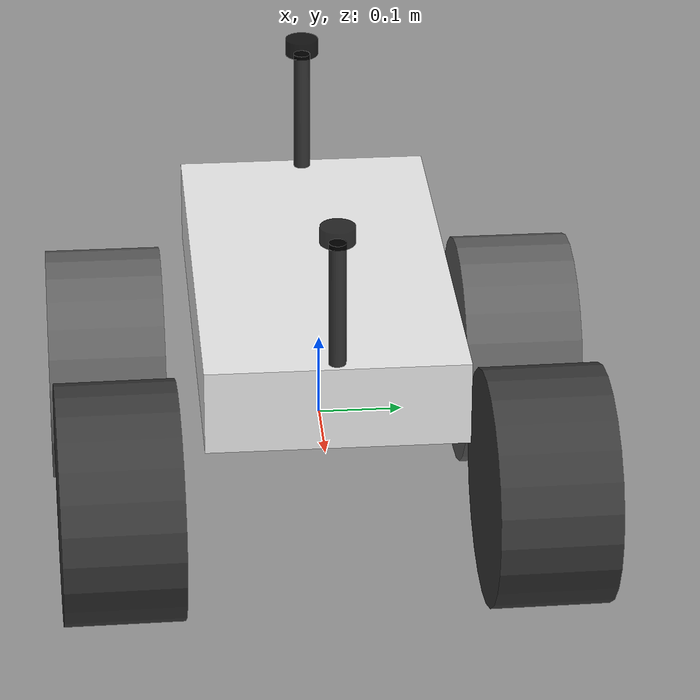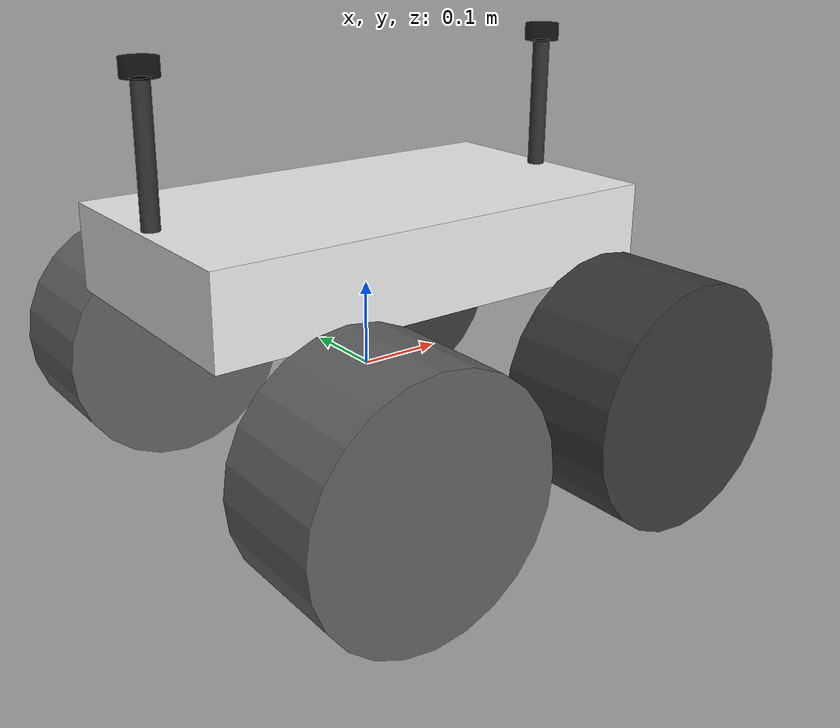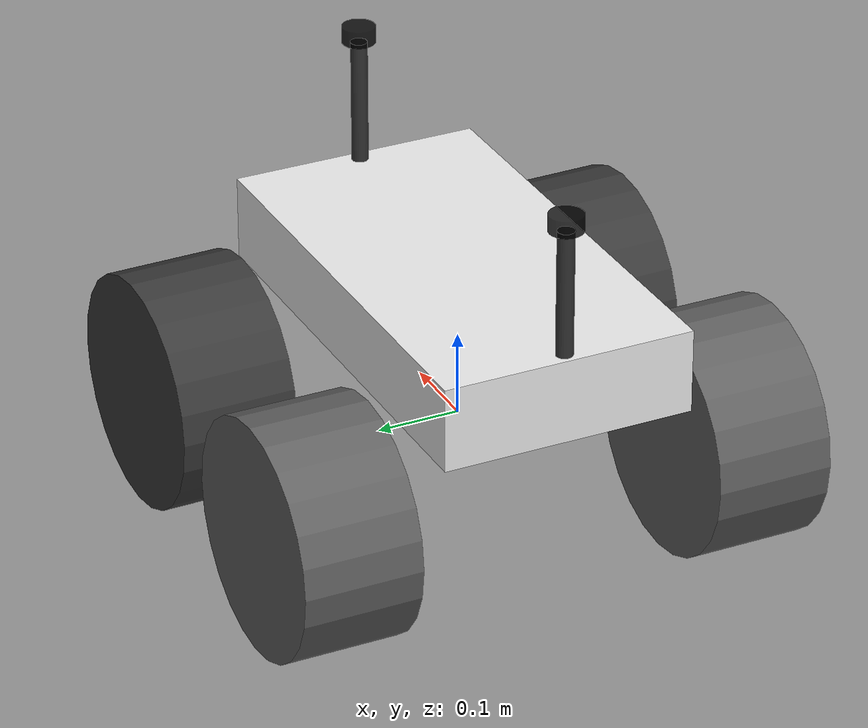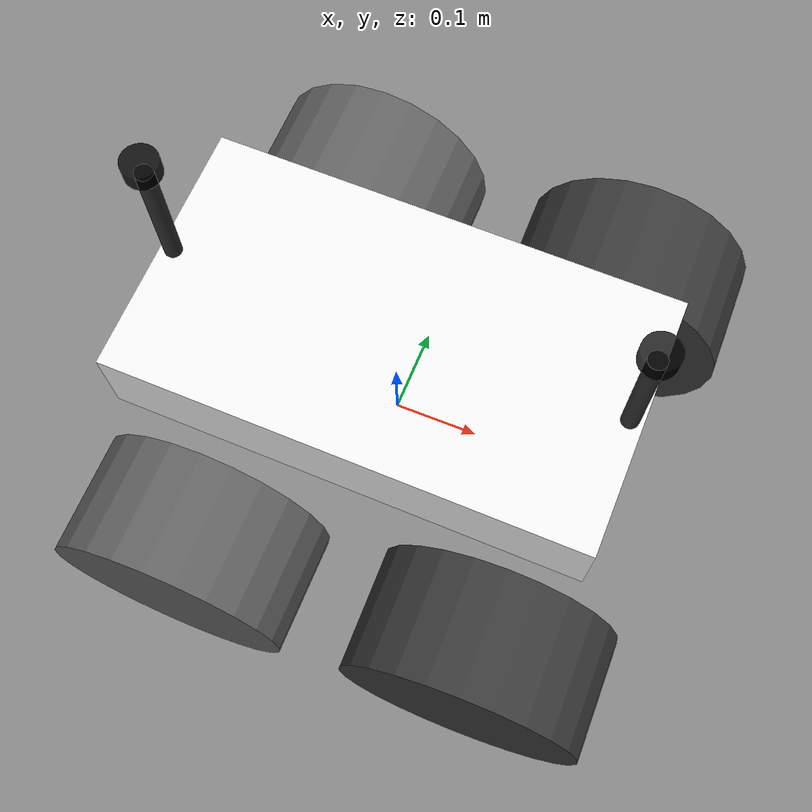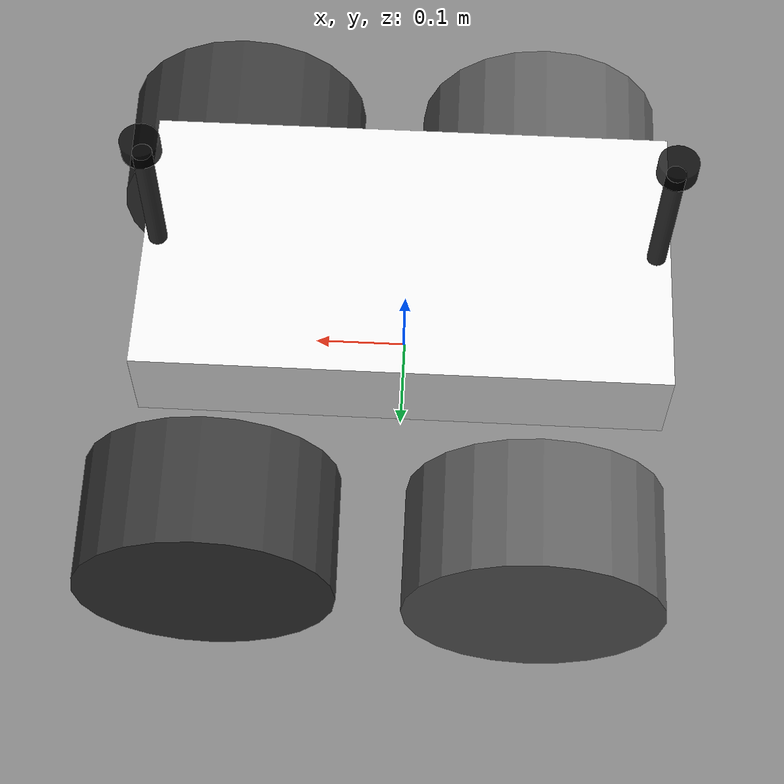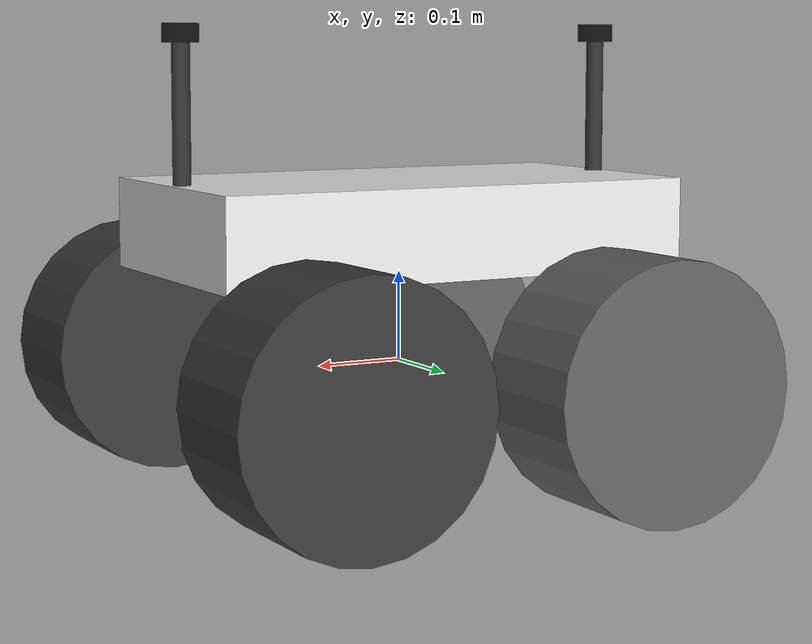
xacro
<?xml version="1.0"?>
<robot xmlns:xacro="http://www.ros.org/wiki/xacro" name="fishbot">
    <xacro:include filename="$(find fishbot_description)/urdf/fishbot/base.urdf.xacro" />
    <!-- 传感器组件 -->
    <xacro:include filename="$(find fishbot_description)/urdf/fishbot/sensor/imu.urdf.xacro" />
    <xacro:include filename="$(find fishbot_description)/urdf/fishbot/sensor/laser_front.urdf.xacro" />
    <xacro:include filename="$(find fishbot_description)/urdf/fishbot/sensor/laser_rear.urdf.xacro" />
     <!-- 执行器组件 -->
    <xacro:include filename="$(find fishbot_description)/urdf/fishbot/actuator/wheel.urdf.xacro" />

    <!-- 传感器 -->
    <xacro:imu_xacro xyz="0 0 0.02" />
    <xacro:laser_front_xacro/>
    <xacro:laser_rear_xacro/>

    <!-- Gazebo 插件 -->
    <xacro:include filename="$(find fishbot_description)/urdf/fishbot/plugins/gazebo_control_plugin.xacro" />

    <xacro:include filename="$(find fishbot_description)/urdf/fishbot/fishbot.ros2_control.xacro" />
    <xacro:include filename="$(find fishbot_description)/urdf/fishbot/plugins/gazebo_sensor_plugin.xacro" />
    <xacro:gazebo_sensor_plugin />
</robot>

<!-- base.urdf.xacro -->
<robot xmlns:xacro="http://www.ros.org/wiki/xacro">
    <xacro:property name="body_mass" value="20.0" /> <!-- 减轻车身重量 -->
    <xacro:property name="body_width" value="0.3" />
    <xacro:property name="body_length" value="0.10" />
    <xacro:property name="body_depth" value="0.55" /> <!-- 将原来的0.75减少到0.55 -->

    <!-- BASE -->
    <link name="base_footprint">
            <origin xyz="0 0 0" rpy="0 0 0" />
    </link>

    <link name="base_link">
        <inertial>
            <origin xyz="0.0374140021041951 -0.000373005187591258 -0.0771282894414029" rpy="0 0 0" />
            <mass value="20.0" /> <!-- 相应减少质量 -->
            <inertia ixx="${body_mass/12 * (body_width*body_width + body_length*body_length)}"
                ixy="0" ixz="0"
                iyy="${body_mass/12 * (body_length*body_length + body_depth*body_depth)}" iyz="0"
                izz="${body_mass/12 * (body_width*body_width + body_depth*body_depth)}" />
        </inertial>
        <visual>
            <origin xyz="0 0 0" rpy="0 0 0" />
            <geometry>
                <box size="0.55 0.3 0.10" /> <!-- 将长度从0.75修改为0.55 -->
            </geometry>
        </visual>
        <collision>
            <origin xyz="0.07 0 -0.05" rpy="0 0 0" />
            <geometry>
                <box size="0.55 0.3 0.10" /> <!-- 将长度从0.75修改为0.55 -->
            </geometry>
        </collision>
    </link>

    <joint name="base_joint" type="fixed">
        <parent link="base_footprint" />
        <child link="base_link" />
        <origin xyz="0.0 0.0 0.1555" rpy="0 0 0" /> <!-- 使用原来chassis_joint的高度 -->
    </joint>

</robot>

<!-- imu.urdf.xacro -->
<robot xmlns:xacro="http://www.ros.org/wiki/xacro">
  <xacro:include filename="$(find fishbot_description)/urdf/fishbot/common_inertia.xacro" />

  <xacro:macro name="imu_xacro" params="xyz">
    <link name="imu_link">
      <visual>
        <origin xyz="0.0 0.0 0.0" rpy="0.0 0.0 0.0" />
        <geometry>
          <box size="0.02 0.02 0.02" />
        </geometry>
      </visual>
      <collision>
        <origin xyz="0.0 0.0 0.0" rpy="0.0 0.0 0.0" />
        <geometry>
          <box size="0.02 0.02 0.02" />
        </geometry>
      </collision>
      <material name="black">
        <color rgba="0.0 0.0 0.0 0.5"/>
      </material>
      <xacro:box_inertia m="0.05" w="0.02" h="0.02" d="0.02" />
    </link>

    <joint name="imu_joint" type="fixed">
      <parent link="base_link" />
      <child link="imu_link" />
      <origin xyz="${xyz}" rpy="0.0 0.0 0.0" />
    </joint>
  </xacro:macro>

</robot>

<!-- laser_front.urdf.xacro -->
<robot xmlns:xacro="http://www.ros.org/wiki/xacro">
   <xacro:include filename="$(find fishbot_description)/urdf/fishbot/common_inertia.xacro" />
    <xacro:macro name="laser_front_xacro">
        <gazebo reference="laser_front">
            <material>Gazebo/Black</material>
        </gazebo>

        <!-- 添加雷达支撑杆 -->
        <link name="laser_front_pole">
            <visual>
                <origin xyz="0 0 0" rpy="0 0 0" />
                <geometry>
                    <cylinder length="0.15" radius="0.01" />
                </geometry>
                <material name="dark_grey">
                    <color rgba="0.2 0.2 0.2 1.0" />
                </material>
            </visual>
            <collision>
                <origin xyz="0 0 0" rpy="0 0 0" />
                <geometry>
                    <cylinder length="0.15" radius="0.01" />
                </geometry>
            </collision>
            <xacro:cylinder_inertia m="0.05" r="0.01" h="0.15" />
        </link>

        <joint name="laser_front_pole_joint" type="fixed">
            <parent link="base_link" />
            <child link="laser_front_pole" />
            <origin xyz="0.26 0 0.125" rpy="0 0 0" />
        </joint>

        <!-- 雷达本体 -->
        <link name="laser_front">
            <visual>
                <origin xyz="0 0 0" rpy="0 0 0" />
                <geometry>
                    <cylinder length="0.02" radius="0.02" />
                </geometry>
                <material name="black">
                    <color rgba="0.0 0.0 0.0 0.8" />
                </material>
            </visual>
            <collision>
                <origin xyz="0 0 0" rpy="0 0 0" />
                <geometry>
                    <cylinder length="0.02" radius="0.02" />
                </geometry>
            </collision>
            <xacro:cylinder_inertia m="0.03" r="0.02" h="0.02" />
        </link>

        <!-- 修改雷达关节连接到支撑杆上 -->
        <joint name="laser_front_joint" type="fixed">
            <parent link="laser_front_pole" />
            <child link="laser_front" />
            <origin xyz="0 0 0.085" rpy="0 0 0" />
        </joint>

    </xacro:macro>

</robot>

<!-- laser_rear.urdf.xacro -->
<robot xmlns:xacro="http://www.ros.org/wiki/xacro">
   <xacro:include filename="$(find fishbot_description)/urdf/fishbot/common_inertia.xacro" />
    <xacro:macro name="laser_rear_xacro">
        <gazebo reference="laser_rear">
            <material>Gazebo/Black</material>
        </gazebo>

        <!-- 添加雷达支撑杆 -->
        <link name="laser_rear_pole">
            <visual>
                <origin xyz="0 0 0" rpy="0 0 0" />
                <geometry>
                    <cylinder length="0.15" radius="0.01" />
                </geometry>
                <material name="dark_grey">
                    <color rgba="0.2 0.2 0.2 1.0" />
                </material>
            </visual>
            <collision>
                <origin xyz="0 0 0" rpy="0 0 0" />
                <geometry>
                    <cylinder length="0.15" radius="0.01" />
                </geometry>
            </collision>
            <xacro:cylinder_inertia m="0.05" r="0.01" h="0.15" />
        </link>

        <joint name="laser_rear_pole_joint" type="fixed">
            <parent link="base_link" />
            <child link="laser_rear_pole" />
            <origin xyz="-0.26 0 0.125" rpy="0 0 0" /> <!-- 将x从-0.360改为-0.26 -->
        </joint>

        <!-- 雷达本体 -->
        <link name="laser_rear">
            <visual>
                <origin xyz="0 0 0" rpy="0 0 0" />
                <geometry>
                    <cylinder length="0.02" radius="0.02" />
                </geometry>
                <material name="black">
                    <color rgba="0.0 0.0 0.0 0.8" />
                </material>
            </visual>
            <collision>
                <origin xyz="0 0 0" rpy="0 0 0" />
                <geometry>
                    <cylinder length="0.02" radius="0.02" />
                </geometry>
            </collision>
            <xacro:cylinder_inertia m="0.03" r="0.02" h="0.02" />
        </link>

        <!-- 修改雷达关节连接到支撑杆上 -->
        <joint name="laser_rear_joint" type="fixed">
            <parent link="laser_rear_pole" />
            <child link="laser_rear" />
            <origin xyz="0 0 0.085" rpy="0 0 0" />
        </joint>

    </xacro:macro>

</robot>

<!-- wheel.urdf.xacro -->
<robot xmlns:xacro="http://www.ros.org/wiki/xacro">

    <xacro:property name="wheel_radius" value="0.14" />
    <xacro:property name="wheel_thickness" value="0.14" />
    <xacro:property name="wheel_mass" value="3.0" />
    <xacro:property name="steering_mass" value="0.01" />

  <!-- FRONT LEFT WHEEL -->
    <link name="fr_left_steer_link">
        <inertial>
            <origin xyz="-0.0002776492198312 0.0163539773588368 4.97346169803237E-09" rpy="0 0 0" />
            <mass value="${steering_mass}" />
            <inertia
                ixx="${steering_mass/12*(3*wheel_radius*wheel_radius + wheel_thickness*wheel_thickness)}"
                ixy="0" ixz="0"
                iyy="${steering_mass/12*(3*wheel_radius*wheel_radius + wheel_thickness*wheel_thickness)}"
                iyz="0" izz="${steering_mass/2 * wheel_radius*wheel_radius}" />
        </inertial>
    </link>
    <joint name="fr_left_steer_joint" type="revolute">
        <origin xyz="0.20 0.24619 -0.1535" rpy="0 0 0" />
        <parent link="base_link" />
        <child link="fr_left_steer_link" />
        <axis xyz="0 0 1" />
        <limit upper="0.6" lower="-0.6" effort="-1.0" velocity="-1.0" />
    </joint>
    <link name="fr_left_wheel_link">
        <inertial>
            <origin xyz="-3.5837499634539E-10 4.97346158701006E-09 -0.016356334080185" rpy="0 0 0" />
            <mass value="${wheel_mass}" />
            <inertia
                ixx="${wheel_mass/12*(3*wheel_radius*wheel_radius + wheel_thickness*wheel_thickness)}"
                ixy="0" ixz="0"
                iyy="${wheel_mass/12*(3*wheel_radius*wheel_radius + wheel_thickness*wheel_thickness)}"
                iyz="0" izz="${wheel_mass/2 * wheel_radius*wheel_radius}" />
        </inertial>
        <visual>
            <origin xyz="0 0 0" rpy="0 0 0" />
            <geometry>
                <cylinder radius="${wheel_radius}" length="${wheel_thickness}" />
            </geometry>
            <material name="">
                <color rgba="0.223529411764706 0.223529411764706 0.223529411764706 1" />
            </material>
        </visual>
        <collision>
            <origin xyz="0 0 0" rpy="0 0 0" />
            <geometry>
                <cylinder radius="${wheel_radius}" length="${wheel_thickness}" />
            </geometry>
        </collision>
    </link>
    <joint name="fr_left_wheel_joint" type="continuous">
        <origin xyz="0 0 0" rpy="1.5708 0 0.016976" />
        <parent link="fr_left_steer_link" />
        <child link="fr_left_wheel_link" />
        <axis xyz="0 0 -1" />
        <!-- 增加摩擦力和阻尼，减少打滑 -->
        <dynamics friction="1.0" damping="0.8" />
        <limit lower="-3.14159" upper="3.14159" effort="200" velocity="-1" />
    </joint>

    <!-- FRONT RIGHT WHEEL -->
    <link name="fr_right_steer_link">
        <inertial>
            <origin xyz="0.000274981985673328 -0.0163540222836661 -3.24802407192237E-11" rpy="0 0 0" />
            <mass value="${steering_mass}" />
            <inertia
                ixx="${steering_mass/12*(3*wheel_radius*wheel_radius + wheel_thickness*wheel_thickness)}"
                ixy="0" ixz="0"
                iyy="${steering_mass/12*(3*wheel_radius*wheel_radius + wheel_thickness*wheel_thickness)}"
                iyz="0" izz="${steering_mass/2 * wheel_radius*wheel_radius}" />
        </inertial>
    </link>
    <joint name="fr_right_steer_joint" type="revolute">
        <origin xyz="0.20 -0.24619 -0.1535" rpy="0 0 0" />
        <parent link="base_link" />
        <child link="fr_right_steer_link" />
        <axis xyz="0 0 1" />
        <limit upper="0.6" lower="-0.6" effort="-1.0" velocity="-1.0" />
    </joint>
    <link name="fr_right_wheel_link">
        <inertial>
            <origin xyz="0.00027498198567355 3.24801296969213E-11 -0.0163540222836661" rpy="0 0 0" />
            <mass value="${wheel_mass}" />
            <inertia
                ixx="${wheel_mass/12*(3*wheel_radius*wheel_radius + wheel_thickness*wheel_thickness)}"
                ixy="0" ixz="0"
                iyy="${wheel_mass/12*(3*wheel_radius*wheel_radius + wheel_thickness*wheel_thickness)}"
                iyz="0" izz="${wheel_mass/2 * wheel_radius*wheel_radius}" />
        </inertial>
        <visual>
            <origin xyz="0 0 0" rpy="0 0 0" />
            <geometry>
                <cylinder radius="${wheel_radius}" length="${wheel_thickness}" />
            </geometry>
            <material name="">
                <color rgba="0.223529411764706 0.223529411764706 0.223529411764706 1" />
            </material>
        </visual>
        <collision>
            <origin xyz="0 0 0" rpy="0 0 0" />
            <geometry>
                <cylinder radius="${wheel_radius}" length="${wheel_thickness}" />
            </geometry>
        </collision>
    </link>
    <joint name="fr_right_wheel_joint" type="continuous">
        <origin xyz="0 0 0" rpy="-1.5708 0 0.016976" />
        <parent link="fr_right_steer_link" />
        <child link="fr_right_wheel_link" />
        <axis xyz="0 0 1" />
        <!-- 增加摩擦力和阻尼，减少打滑 -->
        <dynamics friction="1.0" damping="0.8" />
        <limit lower="-3.14159" upper="3.14159" effort="200" velocity="-1" />
    </joint>

    <!-- REAR LEFT WHEEL -->
    <link name="re_left_wheel_link">
        <inertial>
            <origin xyz="1.245E-09 1.7252E-06 -0.010284" rpy="0 0 0" />
            <mass value="${wheel_mass}" />
            <inertia
                ixx="${wheel_mass/12*(3*wheel_radius*wheel_radius + wheel_thickness*wheel_thickness)}"
                ixy="0" ixz="0"
                iyy="${wheel_mass/12*(3*wheel_radius*wheel_radius + wheel_thickness*wheel_thickness)}"
                iyz="0" izz="${wheel_mass/2 * wheel_radius*wheel_radius}" />
        </inertial>
        <visual>
            <origin xyz="0 0 0" rpy="0 0 0" />
            <geometry>
                <cylinder radius="${wheel_radius}" length="${wheel_thickness}" />
            </geometry>
            <material name="">
                <color rgba="0.37647 0.37647 0.37647 1" />
            </material>
        </visual>
        <collision>
            <origin xyz="0 0 0" rpy="0 0 0" />
            <geometry>
                <cylinder radius="${wheel_radius}" length="${wheel_thickness}" />
            </geometry>
        </collision>
    </link>
    <joint name="re_left_wheel_joint" type="continuous">
        <origin xyz="-0.15 0.252 -0.158" rpy="1.5708 0 0" />
        <parent link="base_link" />
        <child link="re_left_wheel_link" />
        <axis xyz="0 0 -1" />
        <!-- 增加摩擦力和阻尼，减少打滑 -->
        <dynamics friction="1.0" damping="0.8" />
        <limit lower="-3.14159" upper="3.14159" effort="70" velocity="-1" />
    </joint>

    <!-- REAR RIGHT WHEEL -->
    <link name="re_right_wheel_link">
        <inertial>
            <origin xyz="0 0 0" rpy="0 0 0" />
            <mass value="${wheel_mass}" />
            <inertia
                ixx="${wheel_mass/12*(3*wheel_radius*wheel_radius + wheel_thickness*wheel_thickness)}"
                ixy="0" ixz="0"
                iyy="${wheel_mass/12*(3*wheel_radius*wheel_radius + wheel_thickness*wheel_thickness)}"
                iyz="0" izz="${wheel_mass/2 * wheel_radius*wheel_radius}" />
        </inertial>
        <visual>
            <origin xyz="0 0 0" rpy="0 0 0" />
            <geometry>
                <cylinder radius="${wheel_radius}" length="${wheel_thickness}" />
            </geometry>
            <material name="">
                <color rgba="0.37647 0.37647 0.37647 1" />
            </material>
        </visual>
        <collision>
            <origin xyz="0 0 0" rpy="0 0 0" />
            <geometry>
                <cylinder radius="${wheel_radius}" length="${wheel_thickness}" />
            </geometry>
        </collision>
    </link>
    <joint name="re_right_wheel_joint" type="continuous">
        <origin xyz="-0.15 -0.252 -0.158" rpy="-1.5708 0 0" />
        <parent link="base_link" />
        <child link="re_right_wheel_link" />
        <axis xyz="0 0 1" />
        <!-- 增加摩擦力和阻尼，减少打滑 -->
        <dynamics friction="1.0" damping="0.8" />
        <limit lower="-3.14159" upper="3.14159" effort="70" velocity="-1" />
    </joint>
</robot>

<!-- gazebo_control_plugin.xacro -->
<robot xmlns:xacro="http://www.ros.org/wiki/xacro">
     <!-- GAZEBO COLOUR -->
    <!-- Instead, we need to add gazebo tags for our links that refer to Gazebo materials -->
    <gazebo reference="base_link">
        <material>Gazebo/White</material>
        <mu1>0.5</mu1>
        <mu2>0.5</mu2>
    </gazebo>
    <gazebo reference="fr_left_wheel_link">
        <material>Gazebo/Grey</material>
        <mu1>1.0</mu1>
        <mu2>1.0</mu2>
    </gazebo>
    <gazebo reference="fr_right_wheel_link">
        <material>Gazebo/Grey</material>
        <mu1>1.0</mu1>
        <mu2>1.0</mu2>
    </gazebo>
    <gazebo reference="re_left_wheel_link">
        <material>Gazebo/Grey</material>
        <mu1>1.0</mu1>
        <mu2>1.0</mu2>
    </gazebo>
    <gazebo reference="re_right_wheel_link">
        <material>Gazebo/Grey</material>
        <mu1>1.0</mu1>
        <mu2>1.0</mu2>
    </gazebo>
    <gazebo reference="virtual_steer_link">
        <material>Gazebo/Yellow</material>
    </gazebo>

    <!-- JOINT STATE PUBLISHER -->
    <!-- Gazebo requires the use of plugins to interact with other systems such as ROS. -->
    <gazebo>
        <plugin name="gazebo_ros_joint_state_publisher"
            filename="libgazebo_ros_joint_state_publisher.so">
            <update_rate>100</update_rate>
            <joint_name>fr_right_steer_joint</joint_name>
            <joint_name>fr_right_wheel_joint</joint_name>
            <joint_name>fr_left_steer_joint</joint_name>
            <joint_name>fr_left_wheel_joint</joint_name>
            <joint_name>re_right_wheel_joint</joint_name>
            <joint_name>re_left_wheel_joint</joint_name>
            <joint_name>virtual_steering_wheel_joint</joint_name>
        </plugin>
    </gazebo>

    <!-- This plugin will read a JointTrajectory message from the /set_joint_trajectory topic
            and move the machine accordingly. It's a bit clunky but it works. -->
    <gazebo>
        <plugin name="gazebo_ros_joint_pose_trajectory"
            filename="libgazebo_ros_joint_pose_trajectory.so">
            <update_rate>2</update_rate>
        </plugin>
    </gazebo>

    <!-- ACKERMANN DRIVE PLUGIN -->
    <gazebo>
        <plugin name='gazebo_ackermann_drive' filename='libgazebo_ros_ackermann_drive.so'>
            <ros>
                <remapping>cmd_vel:=cmd_vel</remapping>
                <remapping>odom:=odom/bot</remapping>
                <remapping>distance:=distance/bot</remapping>
            </ros>

            <update_rate>100.0</update_rate>

            <!-- wheels -->
            <front_left_joint>fr_left_wheel_joint</front_left_joint>
            <front_right_joint>fr_right_wheel_joint</front_right_joint>
            <rear_left_joint>re_left_wheel_joint</rear_left_joint>
            <rear_right_joint>re_right_wheel_joint</rear_right_joint>
            <left_steering_joint>fr_left_steer_joint</left_steering_joint>
            <right_steering_joint>fr_right_steer_joint</right_steering_joint>
            <steering_wheel_joint>virtual_steering_wheel_joint</steering_wheel_joint>

            <!-- Max absolute steer angle for tyre in radians-->
            <!-- Any cmd_vel angular z greater than this would be capped -->
            <max_steer>0.383972</max_steer>

            <!-- Max absolute steering angle of steering wheel -->
            <max_steering_angle>1.570796</max_steering_angle>

            <!-- Max absolute linear speed in m/s -->
            <max_speed>5</max_speed>

            <!-- PID tuning -->
            <left_steering_pid_gain>1500 0 1</left_steering_pid_gain>
            <left_steering_i_range>0 0</left_steering_i_range>
            <right_steering_pid_gain>1500 0 1</right_steering_pid_gain>
            <right_steering_i_range>0 0</right_steering_i_range>
            <linear_velocity_pid_gain>1500 0 1</linear_velocity_pid_gain>
            <linear_velocity_i_range>0 0</linear_velocity_i_range>

            <!-- output -->
            <publish_odom>true</publish_odom>
            <publish_odom_tf>true</publish_odom_tf>     <!-- Don't pubslish this when using robot
            localization -->
            <publish_wheel_tf>false</publish_wheel_tf>  <!-- Don't publish this. It will override all
            wheel frames to robot_base_frame parameter below.-->
            <publish_distance>true</publish_distance>

      <odometry_frame>odom</odometry_frame>
      <robot_base_frame>base_footprint</robot_base_frame>
      <covariance_x>0.001</covariance_x>
      <covariance_y>0.001</covariance_y>
      <covariance_yaw>0.001</covariance_yaw>

        </plugin>
    </gazebo>

    <!-- Virtual Steering wheel -->
    <link name="virtual_steer_link">
        <visual>
            <origin xyz="0.0 0.0 0.0" rpy="0.0 0.0 0.0" />
            <geometry>
                <box size="0.01 0.15 0.075" />
            </geometry>
            <material name="">
                <color rgba="1.0 1.0 0.0 1" />
            </material>
        </visual>
        <inertial>  <!-- Gazebo won't show this link without this inertial mass -->
            <origin xyz="0.0 0.0 0.0" rpy="0.0 0.0 0.0" />
            <mass value="0.001" />
            <inertia ixx="0.0" ixy="0.0" ixz="0.0" iyy="0.0" iyz="0.0" izz="0.0" />
        </inertial>
    </link>
    <joint name="virtual_steering_wheel_joint" type="revolute">
        <origin xyz="-0.22 0.0 0.0" rpy="0.0 0.0 0.0" />
        <parent link="base_link" />
        <child link="virtual_steer_link" />
        <axis xyz="-1 0 0" />
        <limit lower="-3" upper="3" effort="200" velocity="20" />
    </joint>
</robot>
